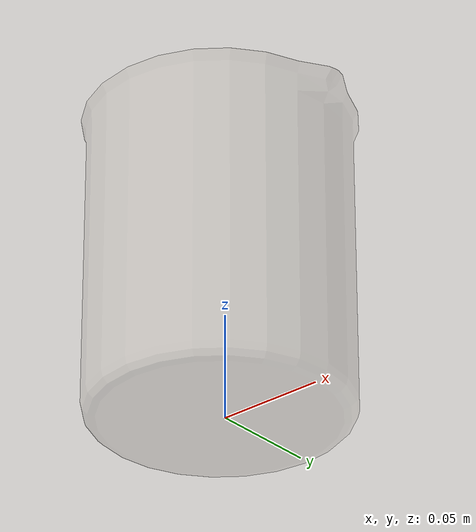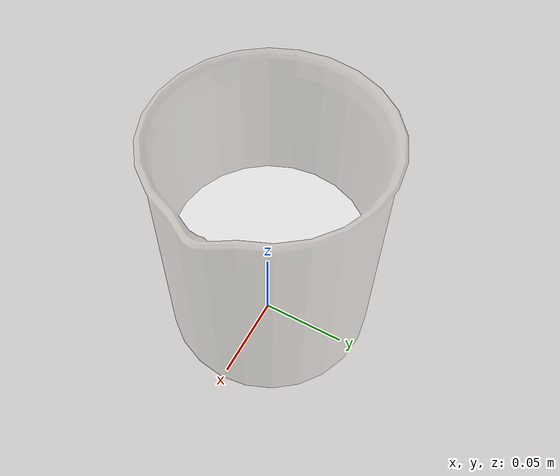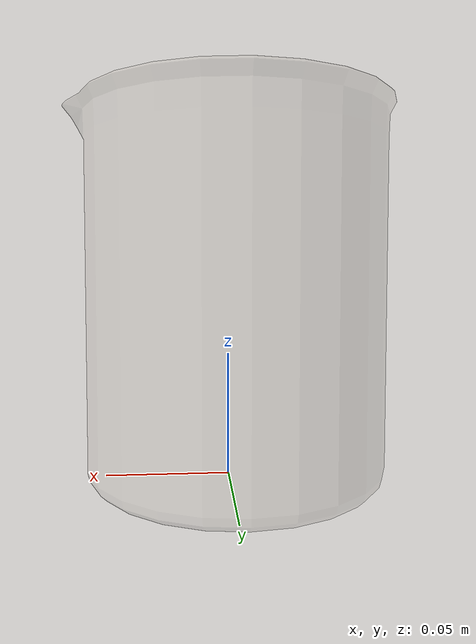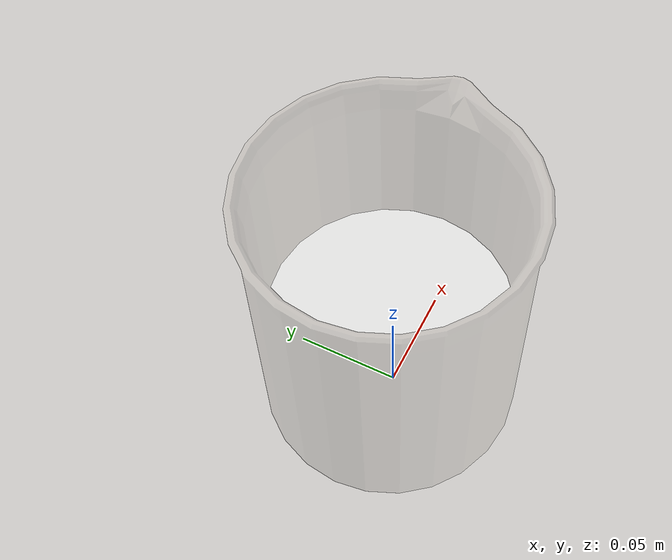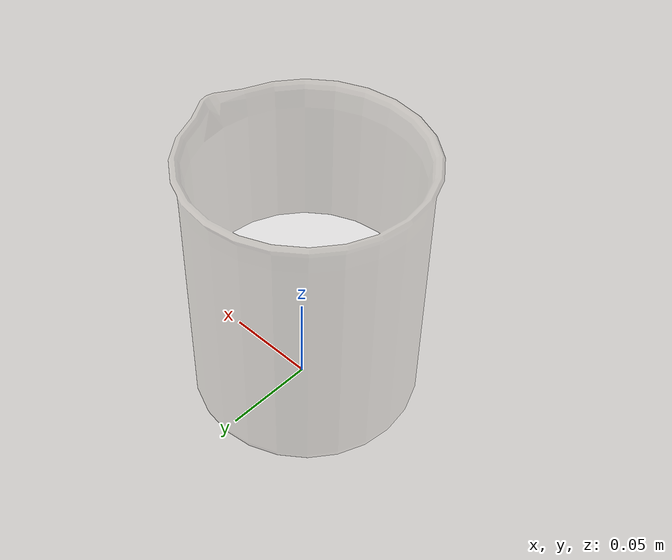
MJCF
<?xml version="1.0" ?>
<!-- @bbox dx=0.131 dy=0.125 dz=0.150 -->
<mujoco model="large_beaker">
  <compiler boundmass="0.015" boundinertia="1e-05" angle="radian"/>
  <default>
    <default class="visual">
      <geom group="2" type="mesh" contype="0" conaffinity="0" density="50"/>
    </default>
    <default class="collision">
      <geom group="3" type="mesh" density="50" friction="1 1 0.001" solimp="0.998 0.998 0.001" solref="0.001 2"/>
    </default>
    <default class="grasppoint">
      <site type="sphere" size="0.005" group="4" rgba="0 0 1 1"/>
    </default>
    <default class="boundpoint">
      <site type="sphere" size="0.01" group="3" rgba="1 0 0 1"/>
    </default>
    <default class="placepoint">
      <site type="sphere" size="0.01" group="2" rgba="0 0 1 0"/>
    </default>
  </default>
  <asset>
    <texture type="2d" name="lab_beaker_a" file="lab_beaker_a.png"/>
    <material name="lab_beaker_a" texture="lab_beaker_a" specular="0.4" shininess="0.001" rgba="1 1 1 0.3"/>
    <material name="CaSO4" rgba="1 1 1 0.7"/>
    <material name="CuCl2" rgba="0.141 1.0 0.174 0.4"/>
    <material name="CuSO4" rgba="0 0.45 1 0.4"/>
    <material name="FeCl3" rgba="0.6475 0.5686 0.023 0.4"/>
    <material name="KMnO4" rgba="0.5 0 0.5 0.4"/>
    <material name="I2" rgba="0.3 0.13 0.0 0.4"/>
    <material name="K2CrO4" rgba="0.57 0.12 0.013 0.4"/>
    <material name="NaCl" rgba="1 1 1 0.3"/>
    <mesh file="large_beaker.obj" scale="0.011901248467305649 0.011901248467305649 0.011901248467305649"/>
    <mesh file="large_beaker/large_beaker_collision_0.obj" scale="0.011901248467305649 0.011901248467305649 0.011901248467305649"/>
    <mesh file="large_beaker/large_beaker_collision_1.obj" scale="0.011901248467305649 0.011901248467305649 0.011901248467305649"/>
    <mesh file="large_beaker/large_beaker_collision_2.obj" scale="0.011901248467305649 0.011901248467305649 0.011901248467305649"/>
    <mesh file="large_beaker/large_beaker_collision_3.obj" scale="0.011901248467305649 0.011901248467305649 0.011901248467305649"/>
    <mesh file="large_beaker/large_beaker_collision_4.obj" scale="0.011901248467305649 0.011901248467305649 0.011901248467305649"/>
    <mesh file="large_beaker/large_beaker_collision_5.obj" scale="0.011901248467305649 0.011901248467305649 0.011901248467305649"/>
    <mesh file="large_beaker/large_beaker_collision_6.obj" scale="0.011901248467305649 0.011901248467305649 0.011901248467305649"/>
    <mesh file="large_beaker/large_beaker_collision_7.obj" scale="0.011901248467305649 0.011901248467305649 0.011901248467305649"/>
    <mesh file="large_beaker/large_beaker_collision_8.obj" scale="0.011901248467305649 0.011901248467305649 0.011901248467305649"/>
    <mesh file="large_beaker/large_beaker_collision_9.obj" scale="0.011901248467305649 0.011901248467305649 0.011901248467305649"/>
    <mesh file="large_beaker/large_beaker_collision_10.obj" scale="0.011901248467305649 0.011901248467305649 0.011901248467305649"/>
    <mesh file="large_beaker/large_beaker_collision_11.obj" scale="0.011901248467305649 0.011901248467305649 0.011901248467305649"/>
    <mesh file="large_beaker/large_beaker_collision_12.obj" scale="0.011901248467305649 0.011901248467305649 0.011901248467305649"/>
    <mesh file="large_beaker/large_beaker_collision_13.obj" scale="0.011901248467305649 0.011901248467305649 0.011901248467305649"/>
    <mesh file="large_beaker/large_beaker_collision_14.obj" scale="0.011901248467305649 0.011901248467305649 0.011901248467305649"/>
    <mesh file="large_beaker/large_beaker_collision_15.obj" scale="0.011901248467305649 0.011901248467305649 0.011901248467305649"/>
    <mesh file="large_beaker/large_beaker_collision_16.obj" scale="0.011901248467305649 0.011901248467305649 0.011901248467305649"/>
    <mesh file="large_beaker/large_beaker_collision_17.obj" scale="0.011901248467305649 0.011901248467305649 0.011901248467305649"/>
    <mesh file="large_beaker/large_beaker_collision_18.obj" scale="0.011901248467305649 0.011901248467305649 0.011901248467305649"/>
    <mesh file="large_beaker/large_beaker_collision_19.obj" scale="0.011901248467305649 0.011901248467305649 0.011901248467305649"/>
    <mesh file="large_beaker/large_beaker_collision_20.obj" scale="0.011901248467305649 0.011901248467305649 0.011901248467305649"/>
    <mesh file="large_beaker/large_beaker_collision_21.obj" scale="0.011901248467305649 0.011901248467305649 0.011901248467305649"/>
    <mesh file="large_beaker/large_beaker_collision_22.obj" scale="0.011901248467305649 0.011901248467305649 0.011901248467305649"/>
    <mesh file="large_beaker/large_beaker_collision_23.obj" scale="0.011901248467305649 0.011901248467305649 0.011901248467305649"/>
    <mesh file="large_beaker/large_beaker_collision_24.obj" scale="0.011901248467305649 0.011901248467305649 0.011901248467305649"/>
    <mesh file="large_beaker/large_beaker_collision_25.obj" scale="0.011901248467305649 0.011901248467305649 0.011901248467305649"/>
    <mesh file="large_beaker/large_beaker_collision_26.obj" scale="0.011901248467305649 0.011901248467305649 0.011901248467305649"/>
    <mesh file="large_beaker/large_beaker_collision_27.obj" scale="0.011901248467305649 0.011901248467305649 0.011901248467305649"/>
    <mesh file="large_beaker/large_beaker_collision_28.obj" scale="0.011901248467305649 0.011901248467305649 0.011901248467305649"/>
    <mesh file="large_beaker/large_beaker_collision_29.obj" scale="0.011901248467305649 0.011901248467305649 0.011901248467305649"/>
    <mesh file="large_beaker/large_beaker_collision_30.obj" scale="0.011901248467305649 0.011901248467305649 0.011901248467305649"/>
    <mesh file="large_beaker/large_beaker_collision_31.obj" scale="0.011901248467305649 0.011901248467305649 0.011901248467305649"/>
    <mesh file="large_beaker/large_beaker_collision_32.obj" scale="0.011901248467305649 0.011901248467305649 0.011901248467305649"/>
  </asset>
  <worldbody>
    <body name="large_beaker">
      <inertial pos="0 0 0.075000" mass="0.02" diaginertia="0.0008 0.0008 0.0005"/>
      <geom material="lab_beaker_a" mesh="large_beaker" class="visual"/>
      <geom mesh="large_beaker_collision_0" class="collision"/>
      <geom mesh="large_beaker_collision_1" class="collision"/>
      <geom mesh="large_beaker_collision_2" class="collision"/>
      <geom mesh="large_beaker_collision_3" class="collision"/>
      <geom mesh="large_beaker_collision_4" class="collision"/>
      <geom mesh="large_beaker_collision_5" class="collision"/>
      <geom mesh="large_beaker_collision_6" class="collision"/>
      <geom mesh="large_beaker_collision_7" class="collision"/>
      <geom mesh="large_beaker_collision_8" class="collision"/>
      <geom mesh="large_beaker_collision_9" class="collision"/>
      <geom mesh="large_beaker_collision_10" class="collision"/>
      <geom mesh="large_beaker_collision_11" class="collision"/>
      <geom mesh="large_beaker_collision_12" class="collision"/>
      <geom mesh="large_beaker_collision_13" class="collision"/>
      <geom mesh="large_beaker_collision_14" class="collision"/>
      <geom mesh="large_beaker_collision_15" class="collision"/>
      <geom mesh="large_beaker_collision_16" class="collision"/>
      <geom mesh="large_beaker_collision_17" class="collision"/>
      <geom mesh="large_beaker_collision_18" class="collision"/>
      <geom mesh="large_beaker_collision_19" class="collision"/>
      <geom mesh="large_beaker_collision_20" class="collision"/>
      <geom mesh="large_beaker_collision_21" class="collision"/>
      <geom mesh="large_beaker_collision_22" class="collision"/>
      <geom mesh="large_beaker_collision_23" class="collision"/>
      <geom mesh="large_beaker_collision_24" class="collision"/>
      <geom mesh="large_beaker_collision_25" class="collision"/>
      <geom mesh="large_beaker_collision_26" class="collision"/>
      <geom mesh="large_beaker_collision_27" class="collision"/>
      <geom mesh="large_beaker_collision_28" class="collision"/>
      <geom mesh="large_beaker_collision_29" class="collision"/>
      <geom mesh="large_beaker_collision_30" class="collision"/>
      <geom mesh="large_beaker_collision_31" class="collision"/>
      <geom mesh="large_beaker_collision_32" class="collision"/>
      <site class="grasppoint" name="grasppoint" pos="0 0 0.1100" group="4"/>
      <site class="placepoint" name="placepoint" pos="0 0 0.1425" group="2"/>
      <geom name="solution" type="cylinder" size="0.055 0.0275" pos="-0.002484 0 0.0405" material="CaSO4" class="visual"/>
      <site name="top_site" pos="0 0 0.1260" size="0.01" rgba="1 0 0 0"/>
      <site name="bottom_site" pos="0 0 0.000000" size="0.01" rgba="0 1 0 0"/>
      <!-- bound_sites (group=3): 容器 AABB 8 角，用于 contain() / 安全边界 -->
      <site class="boundpoint" name="bnd_p0"   pos="-0.0655 -0.0625 0.0"   rgba="0 0 0 0" group="3"/>
      <site class="boundpoint" name="bnd_px"   pos=" 0.0655 -0.0625 0.0"   rgba="0 0 0 0" group="3"/>
      <site class="boundpoint" name="bnd_py"   pos="-0.0655  0.0625 0.0"   rgba="0 0 0 0" group="3"/>
      <site class="boundpoint" name="bnd_pxy"  pos=" 0.0655  0.0625 0.0"   rgba="0 0 0 0" group="3"/>
      <site class="boundpoint" name="bnd_pz"   pos="-0.0655 -0.0625 0.150" rgba="0 0 0 0" group="3"/>
      <site class="boundpoint" name="bnd_pxz"  pos=" 0.0655 -0.0625 0.150" rgba="0 0 0 0" group="3"/>
      <site class="boundpoint" name="bnd_pyz"  pos="-0.0655  0.0625 0.150" rgba="0 0 0 0" group="3"/>
      <site class="boundpoint" name="bnd_pxyz" pos=" 0.0655  0.0625 0.150" rgba="0 0 0 0" group="3"/>
    </body>
  </worldbody>
</mujoco>
